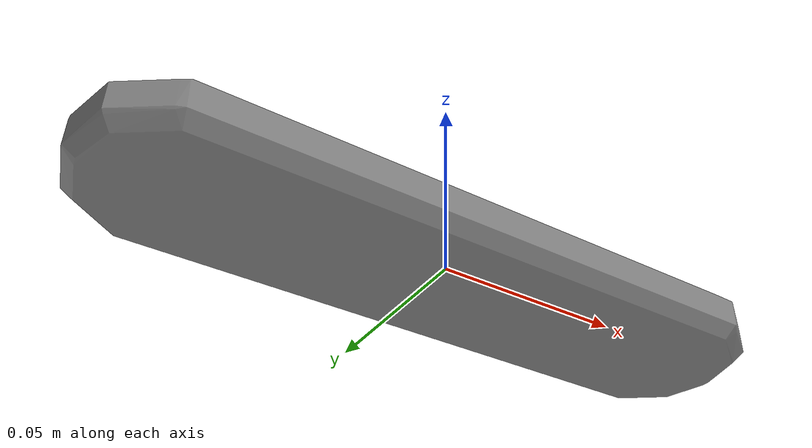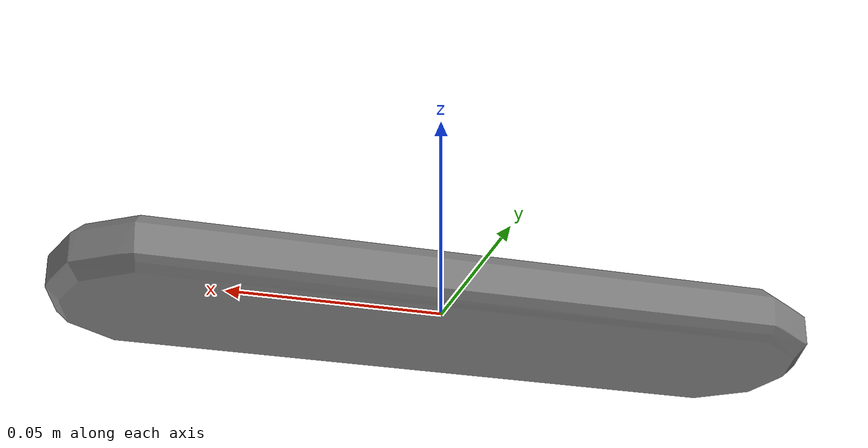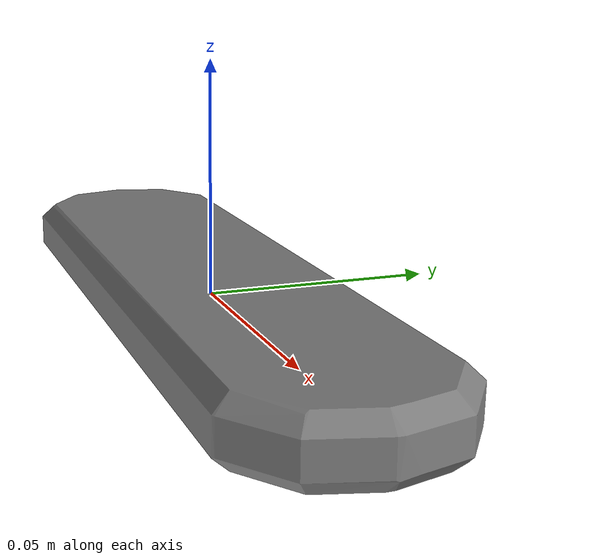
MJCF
<mujoco model="remote_control_frl_apartment_remote-control_01_M">
  <default>
    <default class="visual">
      <geom group="2" type="mesh" contype="0" conaffinity="0" />
    </default>
    <default class="collision">
      <geom group="3" type="mesh" />
    </default>
  </default>
  <asset>
    <mesh file="remote_control_frl_apartment_remote-control_01_M.stl" />
    <mesh file="remote_control_frl_apartment_remote-control_01_M_collision_0.stl" />
    <mesh file="remote_control_frl_apartment_remote-control_01_M_collision_1.stl" />
    <mesh file="remote_control_frl_apartment_remote-control_01_M_collision_2.stl" />
    <mesh file="remote_control_frl_apartment_remote-control_01_M_collision_3.stl" />
    <mesh file="remote_control_frl_apartment_remote-control_01_M_collision_4.stl" />
    <mesh file="remote_control_frl_apartment_remote-control_01_M_collision_5.stl" />
    <mesh file="remote_control_frl_apartment_remote-control_01_M_collision_6.stl" />
    <mesh file="remote_control_frl_apartment_remote-control_01_M_collision_7.stl" />
    <mesh file="remote_control_frl_apartment_remote-control_01_M_collision_8.stl" />
    <mesh file="remote_control_frl_apartment_remote-control_01_M_collision_9.stl" />
    <mesh file="remote_control_frl_apartment_remote-control_01_M_collision_10.stl" />
    <mesh file="remote_control_frl_apartment_remote-control_01_M_collision_11.stl" />
    <mesh file="remote_control_frl_apartment_remote-control_01_M_collision_12.stl" />
    <mesh file="remote_control_frl_apartment_remote-control_01_M_collision_13.stl" />
    <mesh file="remote_control_frl_apartment_remote-control_01_M_collision_14.stl" />
    <mesh file="remote_control_frl_apartment_remote-control_01_M_collision_15.stl" />
  </asset>
  <worldbody>
    <body name="remote_control_frl_apartment_remote-control_01_M">
      <geom mesh="remote_control_frl_apartment_remote-control_01_M" class="visual" />
      <geom mesh="remote_control_frl_apartment_remote-control_01_M_collision_0" class="collision" />
      <geom mesh="remote_control_frl_apartment_remote-control_01_M_collision_1" class="collision" />
      <geom mesh="remote_control_frl_apartment_remote-control_01_M_collision_2" class="collision" />
      <geom mesh="remote_control_frl_apartment_remote-control_01_M_collision_3" class="collision" />
      <geom mesh="remote_control_frl_apartment_remote-control_01_M_collision_4" class="collision" />
      <geom mesh="remote_control_frl_apartment_remote-control_01_M_collision_5" class="collision" />
      <geom mesh="remote_control_frl_apartment_remote-control_01_M_collision_6" class="collision" />
      <geom mesh="remote_control_frl_apartment_remote-control_01_M_collision_7" class="collision" />
      <geom mesh="remote_control_frl_apartment_remote-control_01_M_collision_8" class="collision" />
      <geom mesh="remote_control_frl_apartment_remote-control_01_M_collision_9" class="collision" />
      <geom mesh="remote_control_frl_apartment_remote-control_01_M_collision_10" class="collision" />
      <geom mesh="remote_control_frl_apartment_remote-control_01_M_collision_11" class="collision" />
      <geom mesh="remote_control_frl_apartment_remote-control_01_M_collision_12" class="collision" />
      <geom mesh="remote_control_frl_apartment_remote-control_01_M_collision_13" class="collision" />
      <geom mesh="remote_control_frl_apartment_remote-control_01_M_collision_14" class="collision" />
      <geom mesh="remote_control_frl_apartment_remote-control_01_M_collision_15" class="collision" />
    </body>
  </worldbody>
</mujoco>
